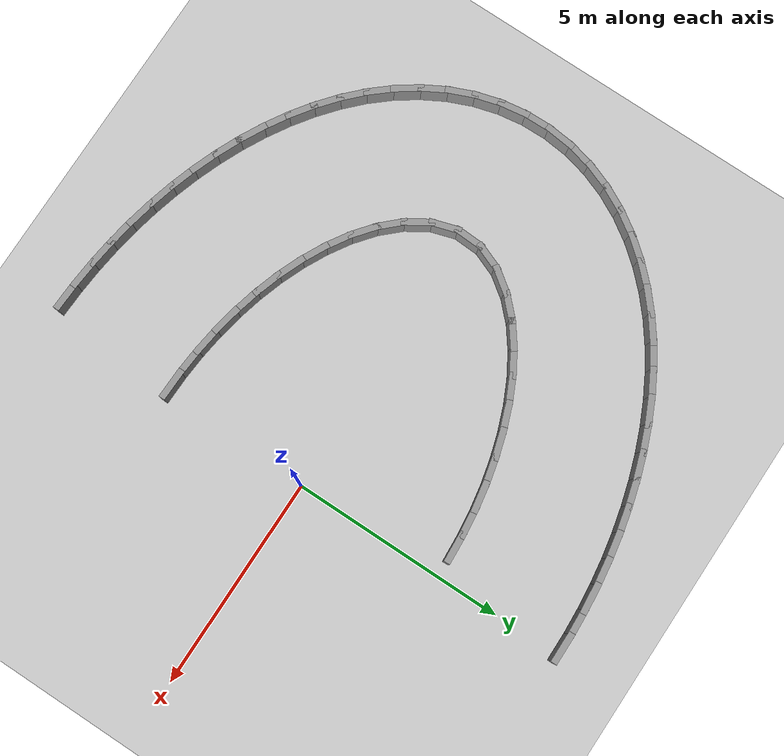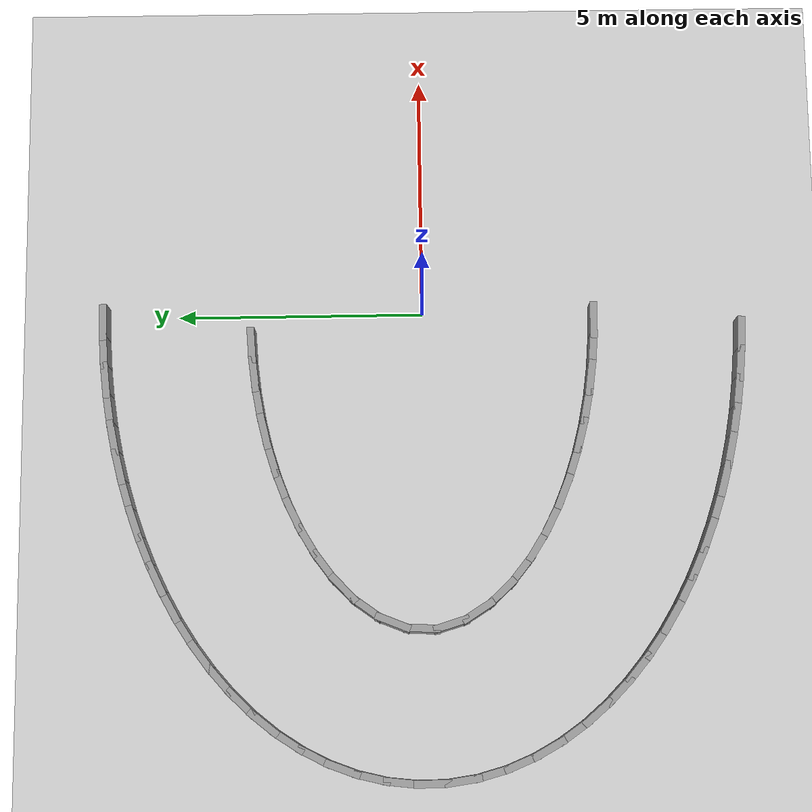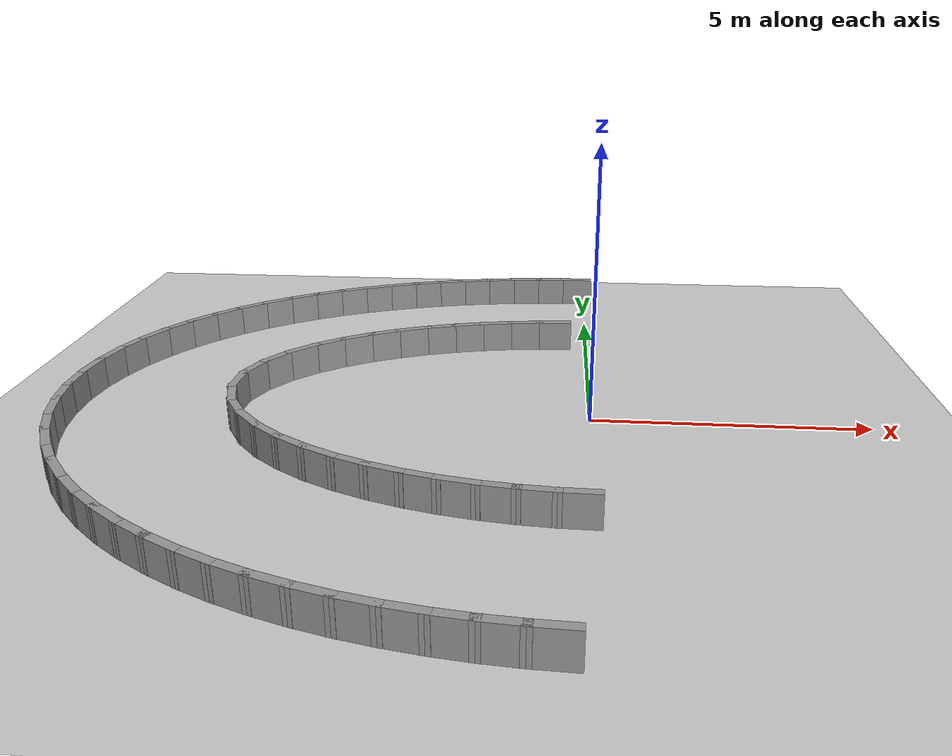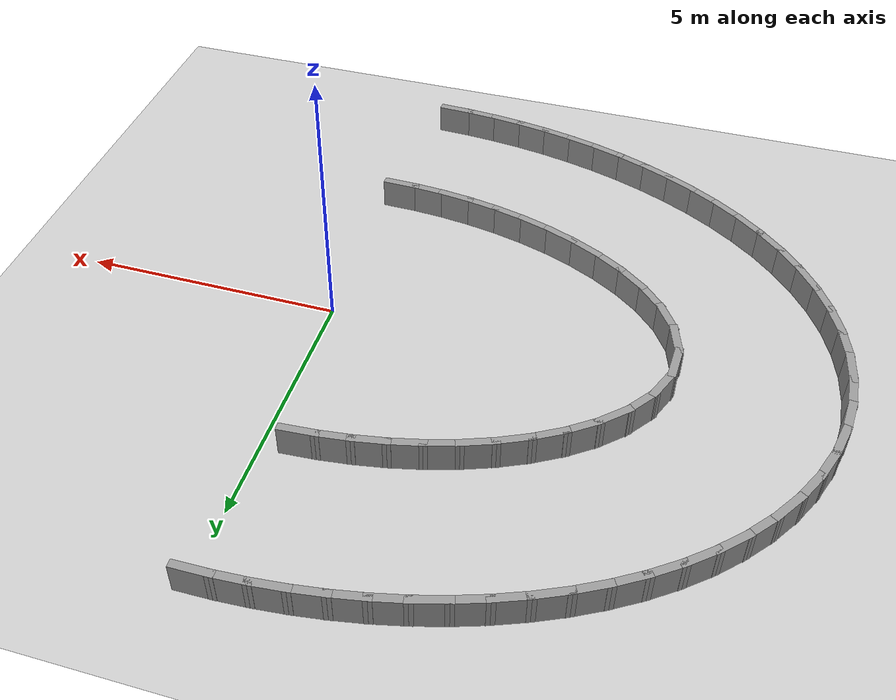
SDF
<sdf version="1.7">
 <world name="default">
  <model name="ground_plane">
   <static>1</static>
   <link name="link">
    <collision name="collision">
     <geometry><plane><normal>0 0 1</normal><size>100 100</size></plane></geometry>
     <surface><friction><ode><mu>100</mu><mu2>50</mu2></ode></friction></surface>
    </collision>
    <visual name="visual">
     <cast_shadows>0</cast_shadows>
     <geometry><plane><normal>0 0 1</normal><size>100 100</size></plane></geometry>
     <material>
      <script><uri>file://media/materials/scripts/gazebo.material</uri><name>Gazebo/Grey</name></script>
     </material>
    </visual>
   </link>
  </model>
  <model name="oval_loop">
   <link name="Wall_14">
    <collision name="Wall_14_Collision">
     <geometry><box><size>0.7499 0.1500 0.6000</size></box></geometry>
     <pose>0 0 0.3000 0 -0 0</pose>
    </collision>
    <visual name="Wall_14_Visual">
     <pose>0 0 0.3000 0 -0 0</pose>
     <geometry><box><size>0.7499 0.1500 0.6000</size></box></geometry>
     <material>
      <script><uri>file://media/materials/scripts/gazebo.material</uri><name>Gazebo/Grey</name></script>
      <ambient>1 1 1 1</ambient>
     </material>
    </visual>
    <pose>-0.7089 3.4737 0 0 -0 -3.07852</pose>
   </link>
   <link name="Wall_15">
    <collision name="Wall_15_Collision">
     <geometry><box><size>0.7499 0.1500 0.6000</size></box></geometry>
     <pose>0 0 0.3000 0 -0 0</pose>
    </collision>
    <visual name="Wall_15_Visual">
     <pose>0 0 0.3000 0 -0 0</pose>
     <geometry><box><size>0.7499 0.1500 0.6000</size></box></geometry>
     <material>
      <script><uri>file://media/materials/scripts/gazebo.material</uri><name>Gazebo/Grey</name></script>
      <ambient>1 1 1 1</ambient>
     </material>
    </visual>
    <pose>-1.3062 3.4196 0 0 -0 -3.02423</pose>
   </link>
   <link name="Wall_16">
    <collision name="Wall_16_Collision">
     <geometry><box><size>0.7499 0.1500 0.6000</size></box></geometry>
     <pose>0 0 0.3000 0 -0 0</pose>
    </collision>
    <visual name="Wall_16_Visual">
     <pose>0 0 0.3000 0 -0 0</pose>
     <geometry><box><size>0.7499 0.1500 0.6000</size></box></geometry>
     <material>
      <script><uri>file://media/materials/scripts/gazebo.material</uri><name>Gazebo/Grey</name></script>
      <ambient>1 1 1 1</ambient>
     </material>
    </visual>
    <pose>-1.8995 3.3327 0 0 -0 -2.96804</pose>
   </link>
   <link name="Wall_17">
    <collision name="Wall_17_Collision">
     <geometry><box><size>0.7499 0.1500 0.6000</size></box></geometry>
     <pose>0 0 0.3000 0 -0 0</pose>
    </collision>
    <visual name="Wall_17_Visual">
     <pose>0 0 0.3000 0 -0 0</pose>
     <geometry><box><size>0.7499 0.1500 0.6000</size></box></geometry>
     <material>
      <script><uri>file://media/materials/scripts/gazebo.material</uri><name>Gazebo/Grey</name></script>
      <ambient>1 1 1 1</ambient>
     </material>
    </visual>
    <pose>-2.4869 3.2118 0 0 -0 -2.90900</pose>
   </link>
   <link name="Wall_18">
    <collision name="Wall_18_Collision">
     <geometry><box><size>0.7499 0.1500 0.6000</size></box></geometry>
     <pose>0 0 0.3000 0 -0 0</pose>
    </collision>
    <visual name="Wall_18_Visual">
     <pose>0 0 0.3000 0 -0 0</pose>
     <geometry><box><size>0.7499 0.1500 0.6000</size></box></geometry>
     <material>
      <script><uri>file://media/materials/scripts/gazebo.material</uri><name>Gazebo/Grey</name></script>
      <ambient>1 1 1 1</ambient>
     </material>
    </visual>
    <pose>-3.0656 3.0552 0 0 -0 -2.84574</pose>
   </link>
   <link name="Wall_19">
    <collision name="Wall_19_Collision">
     <geometry><box><size>0.7499 0.1500 0.6000</size></box></geometry>
     <pose>0 0 0.3000 0 -0 0</pose>
    </collision>
    <visual name="Wall_19_Visual">
     <pose>0 0 0.3000 0 -0 0</pose>
     <geometry><box><size>0.7499 0.1500 0.6000</size></box></geometry>
     <material>
      <script><uri>file://media/materials/scripts/gazebo.material</uri><name>Gazebo/Grey</name></script>
      <ambient>1 1 1 1</ambient>
     </material>
    </visual>
    <pose>-3.6327 2.8607 0 0 -0 -2.77665</pose>
   </link>
   <link name="Wall_20">
    <collision name="Wall_20_Collision">
     <geometry><box><size>0.7498 0.1500 0.6000</size></box></geometry>
     <pose>0 0 0.3000 0 -0 0</pose>
    </collision>
    <visual name="Wall_20_Visual">
     <pose>0 0 0.3000 0 -0 0</pose>
     <geometry><box><size>0.7498 0.1500 0.6000</size></box></geometry>
     <material>
      <script><uri>file://media/materials/scripts/gazebo.material</uri><name>Gazebo/Grey</name></script>
      <ambient>1 1 1 1</ambient>
     </material>
    </visual>
    <pose>-4.1840 2.6253 0 0 -0 -2.69924</pose>
   </link>
   <link name="Wall_21">
    <collision name="Wall_21_Collision">
     <geometry><box><size>0.7498 0.1500 0.6000</size></box></geometry>
     <pose>0 0 0.3000 0 -0 0</pose>
    </collision>
    <visual name="Wall_21_Visual">
     <pose>0 0 0.3000 0 -0 0</pose>
     <geometry><box><size>0.7498 0.1500 0.6000</size></box></geometry>
     <material>
      <script><uri>file://media/materials/scripts/gazebo.material</uri><name>Gazebo/Grey</name></script>
      <ambient>1 1 1 1</ambient>
     </material>
    </visual>
    <pose>-4.7135 2.3449 0 0 -0 -2.61013</pose>
   </link>
   <link name="Wall_22">
    <collision name="Wall_22_Collision">
     <geometry><box><size>0.7497 0.1500 0.6000</size></box></geometry>
     <pose>0 0 0.3000 0 -0 0</pose>
    </collision>
    <visual name="Wall_22_Visual">
     <pose>0 0 0.3000 0 -0 0</pose>
     <geometry><box><size>0.7497 0.1500 0.6000</size></box></geometry>
     <material>
      <script><uri>file://media/materials/scripts/gazebo.material</uri><name>Gazebo/Grey</name></script>
      <ambient>1 1 1 1</ambient>
     </material>
    </visual>
    <pose>-5.2129 2.0144 0 0 -0 -2.50378</pose>
   </link>
   <link name="Wall_23">
    <collision name="Wall_23_Collision">
     <geometry><box><size>0.7494 0.1500 0.6000</size></box></geometry>
     <pose>0 0 0.3000 0 -0 0</pose>
    </collision>
    <visual name="Wall_23_Visual">
     <pose>0 0 0.3000 0 -0 0</pose>
     <geometry><box><size>0.7494 0.1500 0.6000</size></box></geometry>
     <material>
      <script><uri>file://media/materials/scripts/gazebo.material</uri><name>Gazebo/Grey</name></script>
      <ambient>1 1 1 1</ambient>
     </material>
    </visual>
    <pose>-5.6689 1.6271 0 0 -0 -2.37104</pose>
   </link>
   <link name="Wall_24">
    <collision name="Wall_24_Collision">
     <geometry><box><size>0.7490 0.1500 0.6000</size></box></geometry>
     <pose>0 0 0.3000 0 -0 0</pose>
    </collision>
    <visual name="Wall_24_Visual">
     <pose>0 0 0.3000 0 -0 0</pose>
     <geometry><box><size>0.7490 0.1500 0.6000</size></box></geometry>
     <material>
      <script><uri>file://media/materials/scripts/gazebo.material</uri><name>Gazebo/Grey</name></script>
      <ambient>1 1 1 1</ambient>
     </material>
    </visual>
    <pose>-6.0591 1.1755 0 0 -0 -2.19573</pose>
   </link>
   <link name="Wall_25">
    <collision name="Wall_25_Collision">
     <geometry><box><size>0.7479 0.1500 0.6000</size></box></geometry>
     <pose>0 0 0.3000 0 -0 0</pose>
    </collision>
    <visual name="Wall_25_Visual">
     <pose>0 0 0.3000 0 -0 0</pose>
     <geometry><box><size>0.7479 0.1500 0.6000</size></box></geometry>
     <material>
      <script><uri>file://media/materials/scripts/gazebo.material</uri><name>Gazebo/Grey</name></script>
      <ambient>1 1 1 1</ambient>
     </material>
    </visual>
    <pose>-6.3453 0.6550 0 0 -0 -1.95104</pose>
   </link>
   <link name="Wall_26">
    <collision name="Wall_26_Collision">
     <geometry><box><size>0.7467 0.1500 0.6000</size></box></geometry>
     <pose>0 0 0.3000 0 -0 0</pose>
    </collision>
    <visual name="Wall_26_Visual">
     <pose>0 0 0.3000 0 -0 0</pose>
     <geometry><box><size>0.7467 0.1500 0.6000</size></box></geometry>
     <material>
      <script><uri>file://media/materials/scripts/gazebo.material</uri><name>Gazebo/Grey</name></script>
      <ambient>1 1 1 1</ambient>
     </material>
    </visual>
    <pose>-6.4708 0.0794 0 0 -0 -1.61950</pose>
   </link>
   <link name="Wall_27">
    <collision name="Wall_27_Collision">
     <geometry><box><size>0.7475 0.1500 0.6000</size></box></geometry>
     <pose>0 0 0.3000 0 -0 0</pose>
    </collision>
    <visual name="Wall_27_Visual">
     <pose>0 0 0.3000 0 -0 0</pose>
     <geometry><box><size>0.7475 0.1500 0.6000</size></box></geometry>
     <material>
      <script><uri>file://media/materials/scripts/gazebo.material</uri><name>Gazebo/Grey</name></script>
      <ambient>1 1 1 1</ambient>
     </material>
    </visual>
    <pose>-6.3973 -0.5041 0 0 -0 -1.27190</pose>
   </link>
   <link name="Wall_28">
    <collision name="Wall_28_Collision">
     <geometry><box><size>0.7487 0.1500 0.6000</size></box></geometry>
     <pose>0 0 0.3000 0 -0 0</pose>
    </collision>
    <visual name="Wall_28_Visual">
     <pose>0 0 0.3000 0 -0 0</pose>
     <geometry><box><size>0.7487 0.1500 0.6000</size></box></geometry>
     <material>
      <script><uri>file://media/materials/scripts/gazebo.material</uri><name>Gazebo/Grey</name></script>
      <ambient>1 1 1 1</ambient>
     </material>
    </visual>
    <pose>-6.1485 -1.0421 0 0 -0 -1.00353</pose>
   </link>
   <link name="Wall_29">
    <collision name="Wall_29_Collision">
     <geometry><box><size>0.7493 0.1500 0.6000</size></box></geometry>
     <pose>0 0 0.3000 0 -0 0</pose>
    </collision>
    <visual name="Wall_29_Visual">
     <pose>0 0 0.3000 0 -0 0</pose>
     <geometry><box><size>0.7493 0.1500 0.6000</size></box></geometry>
     <material>
      <script><uri>file://media/materials/scripts/gazebo.material</uri><name>Gazebo/Grey</name></script>
      <ambient>1 1 1 1</ambient>
     </material>
    </visual>
    <pose>-5.7816 -1.5122 0 0 -0 -0.81263</pose>
   </link>
   <link name="Wall_30">
    <collision name="Wall_30_Collision">
     <geometry><box><size>0.7496 0.1500 0.6000</size></box></geometry>
     <pose>0 0 0.3000 0 -0 0</pose>
    </collision>
    <visual name="Wall_30_Visual">
     <pose>0 0 0.3000 0 -0 0</pose>
     <geometry><box><size>0.7496 0.1500 0.6000</size></box></geometry>
     <material>
      <script><uri>file://media/materials/scripts/gazebo.material</uri><name>Gazebo/Grey</name></script>
      <ambient>1 1 1 1</ambient>
     </material>
    </visual>
    <pose>-5.3406 -1.9161 0 0 -0 -0.67044</pose>
   </link>
   <link name="Wall_31">
    <collision name="Wall_31_Collision">
     <geometry><box><size>0.7497 0.1500 0.6000</size></box></geometry>
     <pose>0 0 0.3000 0 -0 0</pose>
    </collision>
    <visual name="Wall_31_Visual">
     <pose>0 0 0.3000 0 -0 0</pose>
     <geometry><box><size>0.7497 0.1500 0.6000</size></box></geometry>
     <material>
      <script><uri>file://media/materials/scripts/gazebo.material</uri><name>Gazebo/Grey</name></script>
      <ambient>1 1 1 1</ambient>
     </material>
    </visual>
    <pose>-4.8513 -2.2611 0 0 -0 -0.55810</pose>
   </link>
   <link name="Wall_32">
    <collision name="Wall_32_Collision">
     <geometry><box><size>0.7498 0.1500 0.6000</size></box></geometry>
     <pose>0 0 0.3000 0 -0 0</pose>
    </collision>
    <visual name="Wall_32_Visual">
     <pose>0 0 0.3000 0 -0 0</pose>
     <geometry><box><size>0.7498 0.1500 0.6000</size></box></geometry>
     <material>
      <script><uri>file://media/materials/scripts/gazebo.material</uri><name>Gazebo/Grey</name></script>
      <ambient>1 1 1 1</ambient>
     </material>
    </visual>
    <pose>-4.3289 -2.5544 0 0 -0 -0.46498</pose>
   </link>
   <link name="Wall_33">
    <collision name="Wall_33_Collision">
     <geometry><box><size>0.7499 0.1500 0.6000</size></box></geometry>
     <pose>0 0 0.3000 0 -0 0</pose>
    </collision>
    <visual name="Wall_33_Visual">
     <pose>0 0 0.3000 0 -0 0</pose>
     <geometry><box><size>0.7499 0.1500 0.6000</size></box></geometry>
     <material>
      <script><uri>file://media/materials/scripts/gazebo.material</uri><name>Gazebo/Grey</name></script>
      <ambient>1 1 1 1</ambient>
     </material>
    </visual>
    <pose>-3.7828 -2.8015 0 0 -0 -0.38485</pose>
   </link>
   <link name="Wall_34">
    <collision name="Wall_34_Collision">
     <geometry><box><size>0.7499 0.1500 0.6000</size></box></geometry>
     <pose>0 0 0.3000 0 -0 0</pose>
    </collision>
    <visual name="Wall_34_Visual">
     <pose>0 0 0.3000 0 -0 0</pose>
     <geometry><box><size>0.7499 0.1500 0.6000</size></box></geometry>
     <material>
      <script><uri>file://media/materials/scripts/gazebo.material</uri><name>Gazebo/Grey</name></script>
      <ambient>1 1 1 1</ambient>
     </material>
    </visual>
    <pose>-3.2196 -3.0067 0 0 -0 -0.31378</pose>
   </link>
   <link name="Wall_35">
    <collision name="Wall_35_Collision">
     <geometry><box><size>0.7499 0.1500 0.6000</size></box></geometry>
     <pose>0 0 0.3000 0 -0 0</pose>
    </collision>
    <visual name="Wall_35_Visual">
     <pose>0 0 0.3000 0 -0 0</pose>
     <geometry><box><size>0.7499 0.1500 0.6000</size></box></geometry>
     <material>
      <script><uri>file://media/materials/scripts/gazebo.material</uri><name>Gazebo/Grey</name></script>
      <ambient>1 1 1 1</ambient>
     </material>
    </visual>
    <pose>-2.6436 -3.1732 0 0 -0 -0.24916</pose>
   </link>
   <link name="Wall_36">
    <collision name="Wall_36_Collision">
     <geometry><box><size>0.7499 0.1500 0.6000</size></box></geometry>
     <pose>0 0 0.3000 0 -0 0</pose>
    </collision>
    <visual name="Wall_36_Visual">
     <pose>0 0 0.3000 0 -0 0</pose>
     <geometry><box><size>0.7499 0.1500 0.6000</size></box></geometry>
     <material>
      <script><uri>file://media/materials/scripts/gazebo.material</uri><name>Gazebo/Grey</name></script>
      <ambient>1 1 1 1</ambient>
     </material>
    </visual>
    <pose>-2.0583 -3.3036 0 0 -0 -0.18909</pose>
   </link>
   <link name="Wall_37">
    <collision name="Wall_37_Collision">
     <geometry><box><size>0.7499 0.1500 0.6000</size></box></geometry>
     <pose>0 0 0.3000 0 -0 0</pose>
    </collision>
    <visual name="Wall_37_Visual">
     <pose>0 0 0.3000 0 -0 0</pose>
     <geometry><box><size>0.7499 0.1500 0.6000</size></box></geometry>
     <material>
      <script><uri>file://media/materials/scripts/gazebo.material</uri><name>Gazebo/Grey</name></script>
      <ambient>1 1 1 1</ambient>
     </material>
    </visual>
    <pose>-1.4663 -3.3995 0 0 -0 -0.13227</pose>
   </link>
   <link name="Wall_38">
    <collision name="Wall_38_Collision">
     <geometry><box><size>0.7499 0.1500 0.6000</size></box></geometry>
     <pose>0 0 0.3000 0 -0 0</pose>
    </collision>
    <visual name="Wall_38_Visual">
     <pose>0 0 0.3000 0 -0 0</pose>
     <geometry><box><size>0.7499 0.1500 0.6000</size></box></geometry>
     <material>
      <script><uri>file://media/materials/scripts/gazebo.material</uri><name>Gazebo/Grey</name></script>
      <ambient>1 1 1 1</ambient>
     </material>
    </visual>
    <pose>-0.8699 -3.4623 0 0 -0 -0.07754</pose>
   </link>
   <link name="Wall_39">
    <collision name="Wall_39_Collision">
     <geometry><box><size>0.7499 0.1500 0.6000</size></box></geometry>
     <pose>0 0 0.3000 0 -0 0</pose>
    </collision>
    <visual name="Wall_39_Visual">
     <pose>0 0 0.3000 0 -0 0</pose>
     <geometry><box><size>0.7499 0.1500 0.6000</size></box></geometry>
     <material>
      <script><uri>file://media/materials/scripts/gazebo.material</uri><name>Gazebo/Grey</name></script>
      <ambient>1 1 1 1</ambient>
     </material>
    </visual>
    <pose>-0.2710 -3.4927 0 0 -0 -0.02403</pose>
   </link>
   <link name="Wall_74">
    <collision name="Wall_74_Collision">
     <geometry><box><size>0.7500 0.1500 0.6000</size></box></geometry>
     <pose>0 0 0.3000 0 -0 0</pose>
    </collision>
    <visual name="Wall_74_Visual">
     <pose>0 0 0.3000 0 -0 0</pose>
     <geometry><box><size>0.7500 0.1500 0.6000</size></box></geometry>
     <material>
      <script><uri>file://media/materials/scripts/gazebo.material</uri><name>Gazebo/Grey</name></script>
      <ambient>1 1 1 1</ambient>
     </material>
    </visual>
    <pose>-0.1972 6.4955 0 0 -0 -3.12778</pose>
   </link>
   <link name="Wall_75">
    <collision name="Wall_75_Collision">
     <geometry><box><size>0.7500 0.1500 0.6000</size></box></geometry>
     <pose>0 0 0.3000 0 -0 0</pose>
    </collision>
    <visual name="Wall_75_Visual">
     <pose>0 0 0.3000 0 -0 0</pose>
     <geometry><box><size>0.7500 0.1500 0.6000</size></box></geometry>
     <material>
      <script><uri>file://media/materials/scripts/gazebo.material</uri><name>Gazebo/Grey</name></script>
      <ambient>1 1 1 1</ambient>
     </material>
    </visual>
    <pose>-0.7967 6.4746 0 0 -0 -3.08570</pose>
   </link>
   <link name="Wall_76">
    <collision name="Wall_76_Collision">
     <geometry><box><size>0.7500 0.1500 0.6000</size></box></geometry>
     <pose>0 0 0.3000 0 -0 0</pose>
    </collision>
    <visual name="Wall_76_Visual">
     <pose>0 0 0.3000 0 -0 0</pose>
     <geometry><box><size>0.7500 0.1500 0.6000</size></box></geometry>
     <material>
      <script><uri>file://media/materials/scripts/gazebo.material</uri><name>Gazebo/Grey</name></script>
      <ambient>1 1 1 1</ambient>
     </material>
    </visual>
    <pose>-1.3947 6.4283 0 0 -0 -3.04320</pose>
   </link>
   <link name="Wall_77">
    <collision name="Wall_77_Collision">
     <geometry><box><size>0.7500 0.1500 0.6000</size></box></geometry>
     <pose>0 0 0.3000 0 -0 0</pose>
    </collision>
    <visual name="Wall_77_Visual">
     <pose>0 0 0.3000 0 -0 0</pose>
     <geometry><box><size>0.7500 0.1500 0.6000</size></box></geometry>
     <material>
      <script><uri>file://media/materials/scripts/gazebo.material</uri><name>Gazebo/Grey</name></script>
      <ambient>1 1 1 1</ambient>
     </material>
    </visual>
    <pose>-1.9902 6.3565 0 0 -0 -2.99995</pose>
   </link>
   <link name="Wall_78">
    <collision name="Wall_78_Collision">
     <geometry><box><size>0.7499 0.1500 0.6000</size></box></geometry>
     <pose>0 0 0.3000 0 -0 0</pose>
    </collision>
    <visual name="Wall_78_Visual">
     <pose>0 0 0.3000 0 -0 0</pose>
     <geometry><box><size>0.7499 0.1500 0.6000</size></box></geometry>
     <material>
      <script><uri>file://media/materials/scripts/gazebo.material</uri><name>Gazebo/Grey</name></script>
      <ambient>1 1 1 1</ambient>
     </material>
    </visual>
    <pose>-2.5820 6.2587 0 0 -0 -2.95562</pose>
   </link>
   <link name="Wall_79">
    <collision name="Wall_79_Collision">
     <geometry><box><size>0.7499 0.1500 0.6000</size></box></geometry>
     <pose>0 0 0.3000 0 -0 0</pose>
    </collision>
    <visual name="Wall_79_Visual">
     <pose>0 0 0.3000 0 -0 0</pose>
     <geometry><box><size>0.7499 0.1500 0.6000</size></box></geometry>
     <material>
      <script><uri>file://media/materials/scripts/gazebo.material</uri><name>Gazebo/Grey</name></script>
      <ambient>1 1 1 1</ambient>
     </material>
    </visual>
    <pose>-3.1687 6.1344 0 0 -0 -2.90984</pose>
   </link>
   <link name="Wall_80">
    <collision name="Wall_80_Collision">
     <geometry><box><size>0.7499 0.1500 0.6000</size></box></geometry>
     <pose>0 0 0.3000 0 -0 0</pose>
    </collision>
    <visual name="Wall_80_Visual">
     <pose>0 0 0.3000 0 -0 0</pose>
     <geometry><box><size>0.7499 0.1500 0.6000</size></box></geometry>
     <material>
      <script><uri>file://media/materials/scripts/gazebo.material</uri><name>Gazebo/Grey</name></script>
      <ambient>1 1 1 1</ambient>
     </material>
    </visual>
    <pose>-3.7490 5.9827 0 0 -0 -2.86221</pose>
   </link>
   <link name="Wall_81">
    <collision name="Wall_81_Collision">
     <geometry><box><size>0.7499 0.1500 0.6000</size></box></geometry>
     <pose>0 0 0.3000 0 -0 0</pose>
    </collision>
    <visual name="Wall_81_Visual">
     <pose>0 0 0.3000 0 -0 0</pose>
     <geometry><box><size>0.7499 0.1500 0.6000</size></box></geometry>
     <material>
      <script><uri>file://media/materials/scripts/gazebo.material</uri><name>Gazebo/Grey</name></script>
      <ambient>1 1 1 1</ambient>
     </material>
    </visual>
    <pose>-4.3212 5.8030 0 0 -0 -2.81222</pose>
   </link>
   <link name="Wall_82">
    <collision name="Wall_82_Collision">
     <geometry><box><size>0.7499 0.1500 0.6000</size></box></geometry>
     <pose>0 0 0.3000 0 -0 0</pose>
    </collision>
    <visual name="Wall_82_Visual">
     <pose>0 0 0.3000 0 -0 0</pose>
     <geometry><box><size>0.7499 0.1500 0.6000</size></box></geometry>
     <material>
      <script><uri>file://media/materials/scripts/gazebo.material</uri><name>Gazebo/Grey</name></script>
      <ambient>1 1 1 1</ambient>
     </material>
    </visual>
    <pose>-4.8834 5.5941 0 0 -0 -2.75947</pose>
   </link>
   <link name="Wall_83">
    <collision name="Wall_83_Collision">
     <geometry><box><size>0.7499 0.1500 0.6000</size></box></geometry>
     <pose>0 0 0.3000 0 -0 0</pose>
    </collision>
    <visual name="Wall_83_Visual">
     <pose>0 0 0.3000 0 -0 0</pose>
     <geometry><box><size>0.7499 0.1500 0.6000</size></box></geometry>
     <material>
      <script><uri>file://media/materials/scripts/gazebo.material</uri><name>Gazebo/Grey</name></script>
      <ambient>1 1 1 1</ambient>
     </material>
    </visual>
    <pose>-5.4333 5.3549 0 0 -0 -2.70323</pose>
   </link>
   <link name="Wall_84">
    <collision name="Wall_84_Collision">
     <geometry><box><size>0.7499 0.1500 0.6000</size></box></geometry>
     <pose>0 0 0.3000 0 -0 0</pose>
    </collision>
    <visual name="Wall_84_Visual">
     <pose>0 0 0.3000 0 -0 0</pose>
     <geometry><box><size>0.7499 0.1500 0.6000</size></box></geometry>
     <material>
      <script><uri>file://media/materials/scripts/gazebo.material</uri><name>Gazebo/Grey</name></script>
      <ambient>1 1 1 1</ambient>
     </material>
    </visual>
    <pose>-5.9683 5.0842 0 0 -0 -2.64300</pose>
   </link>
   <link name="Wall_85">
    <collision name="Wall_85_Collision">
     <geometry><box><size>0.7499 0.1500 0.6000</size></box></geometry>
     <pose>0 0 0.3000 0 -0 0</pose>
    </collision>
    <visual name="Wall_85_Visual">
     <pose>0 0 0.3000 0 -0 0</pose>
     <geometry><box><size>0.7499 0.1500 0.6000</size></box></geometry>
     <material>
      <script><uri>file://media/materials/scripts/gazebo.material</uri><name>Gazebo/Grey</name></script>
      <ambient>1 1 1 1</ambient>
     </material>
    </visual>
    <pose>-6.4853 4.7805 0 0 -0 -2.57795</pose>
   </link>
   <link name="Wall_86">
    <collision name="Wall_86_Collision">
     <geometry><box><size>0.7499 0.1500 0.6000</size></box></geometry>
     <pose>0 0 0.3000 0 -0 0</pose>
    </collision>
    <visual name="Wall_86_Visual">
     <pose>0 0 0.3000 0 -0 0</pose>
     <geometry><box><size>0.7499 0.1500 0.6000</size></box></geometry>
     <material>
      <script><uri>file://media/materials/scripts/gazebo.material</uri><name>Gazebo/Grey</name></script>
      <ambient>1 1 1 1</ambient>
     </material>
    </visual>
    <pose>-6.9804 4.4425 0 0 -0 -2.50735</pose>
   </link>
   <link name="Wall_87">
    <collision name="Wall_87_Collision">
     <geometry><box><size>0.7498 0.1500 0.6000</size></box></geometry>
     <pose>0 0 0.3000 0 -0 0</pose>
    </collision>
    <visual name="Wall_87_Visual">
     <pose>0 0 0.3000 0 -0 0</pose>
     <geometry><box><size>0.7498 0.1500 0.6000</size></box></geometry>
     <material>
      <script><uri>file://media/materials/scripts/gazebo.material</uri><name>Gazebo/Grey</name></script>
      <ambient>1 1 1 1</ambient>
     </material>
    </visual>
    <pose>-7.4493 4.0690 0 0 -0 -2.43037</pose>
   </link>
   <link name="Wall_88">
    <collision name="Wall_88_Collision">
     <geometry><box><size>0.7498 0.1500 0.6000</size></box></geometry>
     <pose>0 0 0.3000 0 -0 0</pose>
    </collision>
    <visual name="Wall_88_Visual">
     <pose>0 0 0.3000 0 -0 0</pose>
     <geometry><box><size>0.7498 0.1500 0.6000</size></box></geometry>
     <material>
      <script><uri>file://media/materials/scripts/gazebo.material</uri><name>Gazebo/Grey</name></script>
      <ambient>1 1 1 1</ambient>
     </material>
    </visual>
    <pose>-7.8864 3.6591 0 0 -0 -2.34623</pose>
   </link>
   <link name="Wall_89">
    <collision name="Wall_89_Collision">
     <geometry><box><size>0.7498 0.1500 0.6000</size></box></geometry>
     <pose>0 0 0.3000 0 -0 0</pose>
    </collision>
    <visual name="Wall_89_Visual">
     <pose>0 0 0.3000 0 -0 0</pose>
     <geometry><box><size>0.7498 0.1500 0.6000</size></box></geometry>
     <material>
      <script><uri>file://media/materials/scripts/gazebo.material</uri><name>Gazebo/Grey</name></script>
      <ambient>1 1 1 1</ambient>
     </material>
    </visual>
    <pose>-8.2857 3.2124 0 0 -0 -2.25425</pose>
   </link>
   <link name="Wall_90">
    <collision name="Wall_90_Collision">
     <geometry><box><size>0.7497 0.1500 0.6000</size></box></geometry>
     <pose>0 0 0.3000 0 -0 0</pose>
    </collision>
    <visual name="Wall_90_Visual">
     <pose>0 0 0.3000 0 -0 0</pose>
     <geometry><box><size>0.7497 0.1500 0.6000</size></box></geometry>
     <material>
      <script><uri>file://media/materials/scripts/gazebo.material</uri><name>Gazebo/Grey</name></script>
      <ambient>1 1 1 1</ambient>
     </material>
    </visual>
    <pose>-8.6402 2.7296 0 0 -0 -2.15406</pose>
   </link>
   <link name="Wall_91">
    <collision name="Wall_91_Collision">
     <geometry><box><size>0.7497 0.1500 0.6000</size></box></geometry>
     <pose>0 0 0.3000 0 -0 0</pose>
    </collision>
    <visual name="Wall_91_Visual">
     <pose>0 0 0.3000 0 -0 0</pose>
     <geometry><box><size>0.7497 0.1500 0.6000</size></box></geometry>
     <material>
      <script><uri>file://media/materials/scripts/gazebo.material</uri><name>Gazebo/Grey</name></script>
      <ambient>1 1 1 1</ambient>
     </material>
    </visual>
    <pose>-8.9424 2.2126 0 0 -0 -2.04554</pose>
   </link>
   <link name="Wall_92">
    <collision name="Wall_92_Collision">
     <geometry><box><size>0.7496 0.1500 0.6000</size></box></geometry>
     <pose>0 0 0.3000 0 -0 0</pose>
    </collision>
    <visual name="Wall_92_Visual">
     <pose>0 0 0.3000 0 -0 0</pose>
     <geometry><box><size>0.7496 0.1500 0.6000</size></box></geometry>
     <material>
      <script><uri>file://media/materials/scripts/gazebo.material</uri><name>Gazebo/Grey</name></script>
      <ambient>1 1 1 1</ambient>
     </material>
    </visual>
    <pose>-9.1847 1.6652 0 0 -0 -1.92944</pose>
   </link>
   <link name="Wall_93">
    <collision name="Wall_93_Collision">
     <geometry><box><size>0.7496 0.1500 0.6000</size></box></geometry>
     <pose>0 0 0.3000 0 -0 0</pose>
    </collision>
    <visual name="Wall_93_Visual">
     <pose>0 0 0.3000 0 -0 0</pose>
     <geometry><box><size>0.7496 0.1500 0.6000</size></box></geometry>
     <material>
      <script><uri>file://media/materials/scripts/gazebo.material</uri><name>Gazebo/Grey</name></script>
      <ambient>1 1 1 1</ambient>
     </material>
    </visual>
    <pose>-9.3601 1.0929 0 0 -0 -1.80688</pose>
   </link>
   <link name="Wall_94">
    <collision name="Wall_94_Collision">
     <geometry><box><size>0.7496 0.1500 0.6000</size></box></geometry>
     <pose>0 0 0.3000 0 -0 0</pose>
    </collision>
    <visual name="Wall_94_Visual">
     <pose>0 0 0.3000 0 -0 0</pose>
     <geometry><box><size>0.7496 0.1500 0.6000</size></box></geometry>
     <material>
      <script><uri>file://media/materials/scripts/gazebo.material</uri><name>Gazebo/Grey</name></script>
      <ambient>1 1 1 1</ambient>
     </material>
    </visual>
    <pose>-9.4628 0.5034 0 0 -0 -1.67972</pose>
   </link>
   <link name="Wall_95">
    <collision name="Wall_95_Collision">
     <geometry><box><size>0.7496 0.1500 0.6000</size></box></geometry>
     <pose>0 0 0.3000 0 -0 0</pose>
    </collision>
    <visual name="Wall_95_Visual">
     <pose>0 0 0.3000 0 -0 0</pose>
     <geometry><box><size>0.7496 0.1500 0.6000</size></box></geometry>
     <material>
      <script><uri>file://media/materials/scripts/gazebo.material</uri><name>Gazebo/Grey</name></script>
      <ambient>1 1 1 1</ambient>
     </material>
    </visual>
    <pose>-9.4893 -0.0943 0 0 -0 -1.55040</pose>
   </link>
   <link name="Wall_96">
    <collision name="Wall_96_Collision">
     <geometry><box><size>0.7496 0.1500 0.6000</size></box></geometry>
     <pose>0 0 0.3000 0 -0 0</pose>
    </collision>
    <visual name="Wall_96_Visual">
     <pose>0 0 0.3000 0 -0 0</pose>
     <geometry><box><size>0.7496 0.1500 0.6000</size></box></geometry>
     <material>
      <script><uri>file://media/materials/scripts/gazebo.material</uri><name>Gazebo/Grey</name></script>
      <ambient>1 1 1 1</ambient>
     </material>
    </visual>
    <pose>-9.4386 -0.6905 0 0 -0 -1.42143</pose>
   </link>
   <link name="Wall_97">
    <collision name="Wall_97_Collision">
     <geometry><box><size>0.7496 0.1500 0.6000</size></box></geometry>
     <pose>0 0 0.3000 0 -0 0</pose>
    </collision>
    <visual name="Wall_97_Visual">
     <pose>0 0 0.3000 0 -0 0</pose>
     <geometry><box><size>0.7496 0.1500 0.6000</size></box></geometry>
     <material>
      <script><uri>file://media/materials/scripts/gazebo.material</uri><name>Gazebo/Grey</name></script>
      <ambient>1 1 1 1</ambient>
     </material>
    </visual>
    <pose>-9.3125 -1.2755 0 0 -0 -1.29554</pose>
   </link>
   <link name="Wall_98">
    <collision name="Wall_98_Collision">
     <geometry><box><size>0.7497 0.1500 0.6000</size></box></geometry>
     <pose>0 0 0.3000 0 -0 0</pose>
    </collision>
    <visual name="Wall_98_Visual">
     <pose>0 0 0.3000 0 -0 0</pose>
     <geometry><box><size>0.7497 0.1500 0.6000</size></box></geometry>
     <material>
      <script><uri>file://media/materials/scripts/gazebo.material</uri><name>Gazebo/Grey</name></script>
      <ambient>1 1 1 1</ambient>
     </material>
    </visual>
    <pose>-9.1153 -1.8406 0 0 -0 -1.17477</pose>
   </link>
   <link name="Wall_99">
    <collision name="Wall_99_Collision">
     <geometry><box><size>0.7497 0.1500 0.6000</size></box></geometry>
     <pose>0 0 0.3000 0 -0 0</pose>
    </collision>
    <visual name="Wall_99_Visual">
     <pose>0 0 0.3000 0 -0 0</pose>
     <geometry><box><size>0.7497 0.1500 0.6000</size></box></geometry>
     <material>
      <script><uri>file://media/materials/scripts/gazebo.material</uri><name>Gazebo/Grey</name></script>
      <ambient>1 1 1 1</ambient>
     </material>
    </visual>
    <pose>-8.8533 -2.3790 0 0 -0 -1.06103</pose>
   </link>
   <link name="Wall_100">
    <collision name="Wall_100_Collision">
     <geometry><box><size>0.7497 0.1500 0.6000</size></box></geometry>
     <pose>0 0 0.3000 0 -0 0</pose>
    </collision>
    <visual name="Wall_100_Visual">
     <pose>0 0 0.3000 0 -0 0</pose>
     <geometry><box><size>0.7497 0.1500 0.6000</size></box></geometry>
     <material>
      <script><uri>file://media/materials/scripts/gazebo.material</uri><name>Gazebo/Grey</name></script>
      <ambient>1 1 1 1</ambient>
     </material>
    </visual>
    <pose>-8.5338 -2.8855 0 0 -0 -0.95508</pose>
   </link>
   <link name="Wall_101">
    <collision name="Wall_101_Collision">
     <geometry><box><size>0.7498 0.1500 0.6000</size></box></geometry>
     <pose>0 0 0.3000 0 -0 0</pose>
    </collision>
    <visual name="Wall_101_Visual">
     <pose>0 0 0.3000 0 -0 0</pose>
     <geometry><box><size>0.7498 0.1500 0.6000</size></box></geometry>
     <material>
      <script><uri>file://media/materials/scripts/gazebo.material</uri><name>Gazebo/Grey</name></script>
      <ambient>1 1 1 1</ambient>
     </material>
    </visual>
    <pose>-8.1644 -3.3571 0 0 -0 -0.85748</pose>
   </link>
   <link name="Wall_102">
    <collision name="Wall_102_Collision">
     <geometry><box><size>0.7498 0.1500 0.6000</size></box></geometry>
     <pose>0 0 0.3000 0 -0 0</pose>
    </collision>
    <visual name="Wall_102_Visual">
     <pose>0 0 0.3000 0 -0 0</pose>
     <geometry><box><size>0.7498 0.1500 0.6000</size></box></geometry>
     <material>
      <script><uri>file://media/materials/scripts/gazebo.material</uri><name>Gazebo/Grey</name></script>
      <ambient>1 1 1 1</ambient>
     </material>
    </visual>
    <pose>-7.7525 -3.7922 0 0 -0 -0.76805</pose>
   </link>
   <link name="Wall_103">
    <collision name="Wall_103_Collision">
     <geometry><box><size>0.7498 0.1500 0.6000</size></box></geometry>
     <pose>0 0 0.3000 0 -0 0</pose>
    </collision>
    <visual name="Wall_103_Visual">
     <pose>0 0 0.3000 0 -0 0</pose>
     <geometry><box><size>0.7498 0.1500 0.6000</size></box></geometry>
     <material>
      <script><uri>file://media/materials/scripts/gazebo.material</uri><name>Gazebo/Grey</name></script>
      <ambient>1 1 1 1</ambient>
     </material>
    </visual>
    <pose>-7.3047 -4.1906 0 0 -0 -0.68623</pose>
   </link>
   <link name="Wall_104">
    <collision name="Wall_104_Collision">
     <geometry><box><size>0.7499 0.1500 0.6000</size></box></geometry>
     <pose>0 0 0.3000 0 -0 0</pose>
    </collision>
    <visual name="Wall_104_Visual">
     <pose>0 0 0.3000 0 -0 0</pose>
     <geometry><box><size>0.7499 0.1500 0.6000</size></box></geometry>
     <material>
      <script><uri>file://media/materials/scripts/gazebo.material</uri><name>Gazebo/Grey</name></script>
      <ambient>1 1 1 1</ambient>
     </material>
    </visual>
    <pose>-6.8271 -4.5528 0 0 -0 -0.61133</pose>
   </link>
   <link name="Wall_105">
    <collision name="Wall_105_Collision">
     <geometry><box><size>0.7499 0.1500 0.6000</size></box></geometry>
     <pose>0 0 0.3000 0 -0 0</pose>
    </collision>
    <visual name="Wall_105_Visual">
     <pose>0 0 0.3000 0 -0 0</pose>
     <geometry><box><size>0.7499 0.1500 0.6000</size></box></geometry>
     <material>
      <script><uri>file://media/materials/scripts/gazebo.material</uri><name>Gazebo/Grey</name></script>
      <ambient>1 1 1 1</ambient>
     </material>
    </visual>
    <pose>-6.3246 -4.8798 0 0 -0 -0.54258</pose>
   </link>
   <link name="Wall_106">
    <collision name="Wall_106_Collision">
     <geometry><box><size>0.7499 0.1500 0.6000</size></box></geometry>
     <pose>0 0 0.3000 0 -0 0</pose>
    </collision>
    <visual name="Wall_106_Visual">
     <pose>0 0 0.3000 0 -0 0</pose>
     <geometry><box><size>0.7499 0.1500 0.6000</size></box></geometry>
     <material>
      <script><uri>file://media/materials/scripts/gazebo.material</uri><name>Gazebo/Grey</name></script>
      <ambient>1 1 1 1</ambient>
     </material>
    </visual>
    <pose>-5.8016 -5.1730 0 0 -0 -0.47914</pose>
   </link>
   <link name="Wall_107">
    <collision name="Wall_107_Collision">
     <geometry><box><size>0.7499 0.1500 0.6000</size></box></geometry>
     <pose>0 0 0.3000 0 -0 0</pose>
    </collision>
    <visual name="Wall_107_Visual">
     <pose>0 0 0.3000 0 -0 0</pose>
     <geometry><box><size>0.7499 0.1500 0.6000</size></box></geometry>
     <material>
      <script><uri>file://media/materials/scripts/gazebo.material</uri><name>Gazebo/Grey</name></script>
      <ambient>1 1 1 1</ambient>
     </material>
    </visual>
    <pose>-5.2615 -5.4336 0 0 -0 -0.42024</pose>
   </link>
   <link name="Wall_108">
    <collision name="Wall_108_Collision">
     <geometry><box><size>0.7499 0.1500 0.6000</size></box></geometry>
     <pose>0 0 0.3000 0 -0 0</pose>
    </collision>
    <visual name="Wall_108_Visual">
     <pose>0 0 0.3000 0 -0 0</pose>
     <geometry><box><size>0.7499 0.1500 0.6000</size></box></geometry>
     <material>
      <script><uri>file://media/materials/scripts/gazebo.material</uri><name>Gazebo/Grey</name></script>
      <ambient>1 1 1 1</ambient>
     </material>
    </visual>
    <pose>-4.7075 -5.6631 0 0 -0 -0.36521</pose>
   </link>
   <link name="Wall_109">
    <collision name="Wall_109_Collision">
     <geometry><box><size>0.7499 0.1500 0.6000</size></box></geometry>
     <pose>0 0 0.3000 0 -0 0</pose>
    </collision>
    <visual name="Wall_109_Visual">
     <pose>0 0 0.3000 0 -0 0</pose>
     <geometry><box><size>0.7499 0.1500 0.6000</size></box></geometry>
     <material>
      <script><uri>file://media/materials/scripts/gazebo.material</uri><name>Gazebo/Grey</name></script>
      <ambient>1 1 1 1</ambient>
     </material>
    </visual>
    <pose>-4.1419 -5.8627 0 0 -0 -0.31331</pose>
   </link>
   <link name="Wall_110">
    <collision name="Wall_110_Collision">
     <geometry><box><size>0.7499 0.1500 0.6000</size></box></geometry>
     <pose>0 0 0.3000 0 -0 0</pose>
    </collision>
    <visual name="Wall_110_Visual">
     <pose>0 0 0.3000 0 -0 0</pose>
     <geometry><box><size>0.7499 0.1500 0.6000</size></box></geometry>
     <material>
      <script><uri>file://media/materials/scripts/gazebo.material</uri><name>Gazebo/Grey</name></script>
      <ambient>1 1 1 1</ambient>
     </material>
    </visual>
    <pose>-3.5670 -6.0335 0 0 -0 -0.26416</pose>
   </link>
   <link name="Wall_111">
    <collision name="Wall_111_Collision">
     <geometry><box><size>0.7499 0.1500 0.6000</size></box></geometry>
     <pose>0 0 0.3000 0 -0 0</pose>
    </collision>
    <visual name="Wall_111_Visual">
     <pose>0 0 0.3000 0 -0 0</pose>
     <geometry><box><size>0.7499 0.1500 0.6000</size></box></geometry>
     <material>
      <script><uri>file://media/materials/scripts/gazebo.material</uri><name>Gazebo/Grey</name></script>
      <ambient>1 1 1 1</ambient>
     </material>
    </visual>
    <pose>-2.9845 -6.1764 0 0 -0 -0.21716</pose>
   </link>
   <link name="Wall_112">
    <collision name="Wall_112_Collision">
     <geometry><box><size>0.7500 0.1500 0.6000</size></box></geometry>
     <pose>0 0 0.3000 0 -0 0</pose>
    </collision>
    <visual name="Wall_112_Visual">
     <pose>0 0 0.3000 0 -0 0</pose>
     <geometry><box><size>0.7500 0.1500 0.6000</size></box></geometry>
     <material>
      <script><uri>file://media/materials/scripts/gazebo.material</uri><name>Gazebo/Grey</name></script>
      <ambient>1 1 1 1</ambient>
     </material>
    </visual>
    <pose>-2.3960 -6.2924 0 0 -0 -0.17187</pose>
   </link>
   <link name="Wall_113">
    <collision name="Wall_113_Collision">
     <geometry><box><size>0.7500 0.1500 0.6000</size></box></geometry>
     <pose>0 0 0.3000 0 -0 0</pose>
    </collision>
    <visual name="Wall_113_Visual">
     <pose>0 0 0.3000 0 -0 0</pose>
     <geometry><box><size>0.7500 0.1500 0.6000</size></box></geometry>
     <material>
      <script><uri>file://media/materials/scripts/gazebo.material</uri><name>Gazebo/Grey</name></script>
      <ambient>1 1 1 1</ambient>
     </material>
    </visual>
    <pose>-1.8029 -6.3819 0 0 -0 -0.12792</pose>
   </link>
   <link name="Wall_114">
    <collision name="Wall_114_Collision">
     <geometry><box><size>0.7500 0.1500 0.6000</size></box></geometry>
     <pose>0 0 0.3000 0 -0 0</pose>
    </collision>
    <visual name="Wall_114_Visual">
     <pose>0 0 0.3000 0 -0 0</pose>
     <geometry><box><size>0.7500 0.1500 0.6000</size></box></geometry>
     <material>
      <script><uri>file://media/materials/scripts/gazebo.material</uri><name>Gazebo/Grey</name></script>
      <ambient>1 1 1 1</ambient>
     </material>
    </visual>
    <pose>-1.2065 -6.4457 0 0 -0 -0.08494</pose>
   </link>
   <link name="Wall_115">
    <collision name="Wall_115_Collision">
     <geometry><box><size>0.7500 0.1500 0.6000</size></box></geometry>
     <pose>0 0 0.3000 0 -0 0</pose>
    </collision>
    <visual name="Wall_115_Visual">
     <pose>0 0 0.3000 0 -0 0</pose>
     <geometry><box><size>0.7500 0.1500 0.6000</size></box></geometry>
     <material>
      <script><uri>file://media/materials/scripts/gazebo.material</uri><name>Gazebo/Grey</name></script>
      <ambient>1 1 1 1</ambient>
     </material>
    </visual>
    <pose>-0.6079 -6.4839 0 0 -0 -0.04260</pose>
   </link>
   <static>1</static>
  </model>
 </world>
</sdf>
